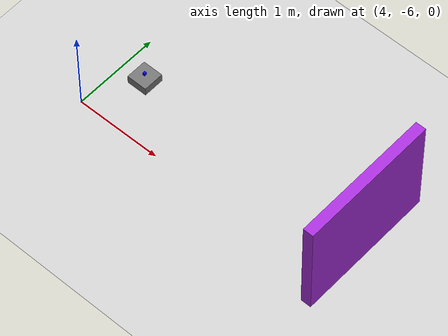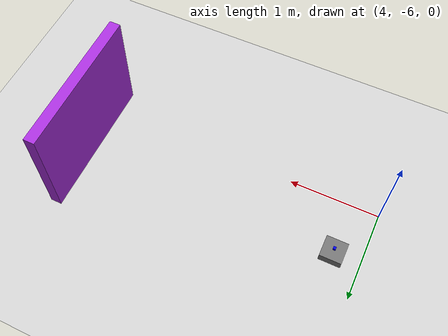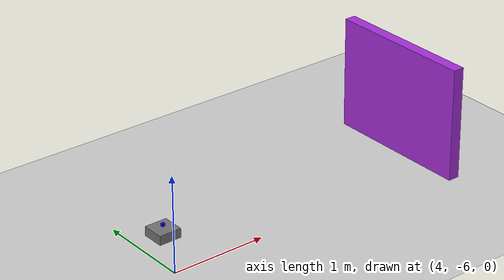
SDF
<sdf version="1.7">
 <world name="my_world">
  <model name="ground_plane">
   <static>1</static>
   <link name="link">
    <collision name="collision">
     <geometry><plane><normal>0 0 1</normal><size>100 100</size></plane></geometry>
     <surface>
      <contact><collide_bitmask>65535</collide_bitmask></contact>
      <friction><ode><mu>100</mu><mu2>50</mu2></ode></friction>
     </surface>
    </collision>
    <visual name="visual">
     <cast_shadows>0</cast_shadows>
     <geometry><plane><normal>0 0 1</normal><size>100 100</size></plane></geometry>
     <material>
      <script><uri>file://media/materials/scripts/gazebo.material</uri><name>Gazebo/Grey</name></script>
     </material>
    </visual>
   </link>
  </model>
  <model name="competition_blue_pickup_tray_4">
   <static>true</static>
   <pose>4.3 -5.4 0.05 0 0 1.5707963268</pose>
   <link name="tray">
    <collision name="collision">
     <geometry><box><size>0.24 0.24 0.10</size></box></geometry>
     <surface><friction><ode><mu>10</mu><mu2>10</mu2></ode></friction></surface>
    </collision>
    <visual name="visual">
     <geometry><box><size>0.24 0.24 0.10</size></box></geometry>
     <material><ambient>0.35 0.35 0.35 1</ambient><diffuse>0.45 0.45 0.45 1</diffuse></material>
    </visual>
   </link>
  </model>
  <model name="blue_cube_4">
   <pose>4.3 -5.4 0.13 0 0 0</pose>
   <link name="link">
    <inertial>
     <mass>0.005</mass>
     <inertia>
      <ixx>0.00000075</ixx>
      <ixy>0</ixy>
      <ixz>0</ixz>
      <iyy>0.00000075</iyy>
      <iyz>0</iyz>
      <izz>0.00000075</izz>
     </inertia>
    </inertial>
    <collision name="collision">
     <geometry><box><size>0.03 0.03 0.03</size></box></geometry>
     <surface>
      <contact>
       <ode>
        <soft_cfm>0.001</soft_cfm>
        <soft_erp>0.2</soft_erp>
        <max_vel>0.1</max_vel>
        <min_depth>0.001</min_depth>
       </ode>
      </contact>
      <friction><ode><mu>0.01</mu><mu2>0.01</mu2></ode></friction>
     </surface>
    </collision>
    <visual name="visual">
     <geometry><box><size>0.03 0.03 0.03</size></box></geometry>
     <material><ambient>0 0 1 1</ambient><diffuse>0 0 1 1</diffuse></material>
    </visual>
   </link>
  </model>
  <model name="preview_moving_partition_2">
   <static>false</static>
   <pose>7.2 -5.5 0.6 0 0 0</pose>
   <link name="body">
    <kinematic>true</kinematic>
    <gravity>false</gravity>
    <inertial>
     <mass>1.0</mass>
     <inertia>
      <ixx>0.3333333333333333</ixx>
      <ixy>0</ixy>
      <ixz>0</ixz>
      <iyy>0.12119999999999999</iyy>
      <iyz>0</iyz>
      <izz>0.21453333333333338</izz>
     </inertia>
    </inertial>
    <collision name="collision">
     <geometry><box><size>0.12 1.6 1.2</size></box></geometry>
     <surface><friction><ode><mu>0.8</mu><mu2>0.8</mu2></ode></friction></surface>
    </collision>
    <visual name="visual">
     <geometry><box><size>0.12 1.6 1.2</size></box></geometry>
     <material><ambient>0.65 0.18 0.85 1</ambient><diffuse>0.65 0.18 0.85 1</diffuse></material>
    </visual>
   </link>
  </model>
 </world>
</sdf>
